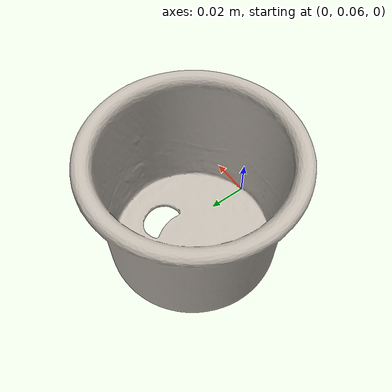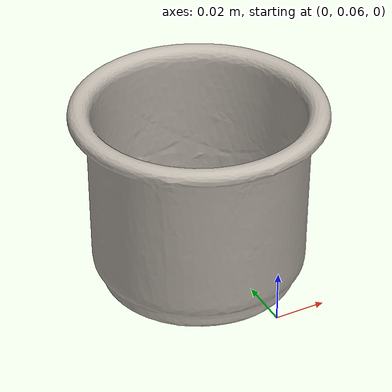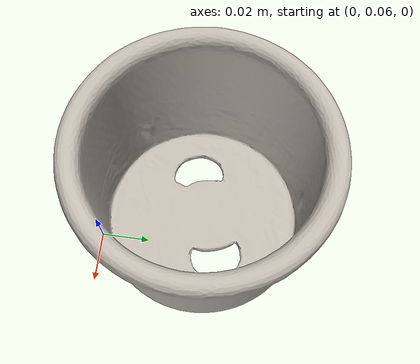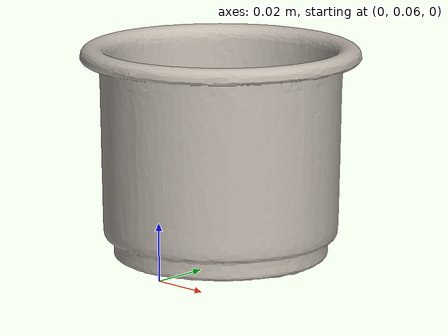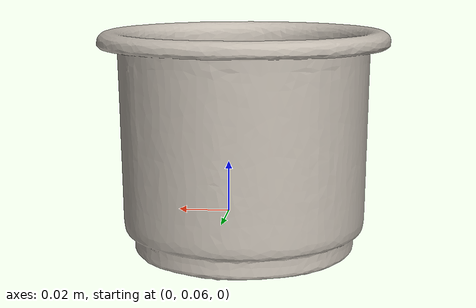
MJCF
<mujoco model="cups_1">
    <default>
        <default class="visual_cups">
          <geom group="2" type="mesh" contype="0" conaffinity="0"/>
        </default>
        <default class="collision_cups">
          <geom group="3" type="mesh"/>
        </default>
      </default>
    <asset>
      <texture type="2d" name="cups_1" file="cups_1.png"/>
      <material name="material_0" texture="cups_1" specular="0.5" shininess="0.5"/>
      <mesh file="cups_1.obj"/>
      <mesh file="cups_1_collision_0.obj"/>
      <mesh file="cups_1_collision_1.obj"/>
      <mesh file="cups_1_collision_2.obj"/>
      <mesh file="cups_1_collision_3.obj"/>
      <mesh file="cups_1_collision_4.obj"/>
      <mesh file="cups_1_collision_5.obj"/>
      <mesh file="cups_1_collision_6.obj"/>
      <mesh file="cups_1_collision_7.obj"/>
      <mesh file="cups_1_collision_8.obj"/>
      <mesh file="cups_1_collision_9.obj"/>
      <mesh file="cups_1_collision_10.obj"/>
      <mesh file="cups_1_collision_11.obj"/>
      <mesh file="cups_1_collision_12.obj"/>
      <mesh file="cups_1_collision_13.obj"/>
      <mesh file="cups_1_collision_14.obj"/>
      <mesh file="cups_1_collision_15.obj"/>
      <mesh file="cups_1_collision_16.obj"/>
      <mesh file="cups_1_collision_17.obj"/>
      <mesh file="cups_1_collision_18.obj"/>
      <mesh file="cups_1_collision_19.obj"/>
      <mesh file="cups_1_collision_20.obj"/>
      <mesh file="cups_1_collision_21.obj"/>
      <mesh file="cups_1_collision_22.obj"/>
      <mesh file="cups_1_collision_23.obj"/>
      <mesh file="cups_1_collision_24.obj"/>
      <mesh file="cups_1_collision_25.obj"/>
      <mesh file="cups_1_collision_26.obj"/>
      <mesh file="cups_1_collision_27.obj"/>
      <mesh file="cups_1_collision_28.obj"/>
      <mesh file="cups_1_collision_29.obj"/>
      <mesh file="cups_1_collision_30.obj"/>
      <mesh file="cups_1_collision_31.obj"/>
    </asset>
    <worldbody>
    <body name="obj_cups_1" pos="0.0 0.1 0.0">
        <joint type="free" />
        <geom material="material_0" mesh="cups_1"  class="visual_cups"/>
        <geom mesh="cups_1_collision_0" class="collision_cups"/>
        <geom mesh="cups_1_collision_1" class="collision_cups"/>
        <geom mesh="cups_1_collision_2" class="collision_cups"/>
        <geom mesh="cups_1_collision_3" class="collision_cups"/>
        <geom mesh="cups_1_collision_4" class="collision_cups"/>
        <geom mesh="cups_1_collision_5" class="collision_cups"/>
        <geom mesh="cups_1_collision_6" class="collision_cups"/>
        <geom mesh="cups_1_collision_7" class="collision_cups"/>
        <geom mesh="cups_1_collision_8" class="collision_cups"/>
        <geom mesh="cups_1_collision_9" class="collision_cups"/>
        <geom mesh="cups_1_collision_10" class="collision_cups"/>
        <geom mesh="cups_1_collision_11" class="collision_cups"/>
        <geom mesh="cups_1_collision_12" class="collision_cups"/>
        <geom mesh="cups_1_collision_13" class="collision_cups"/>
        <geom mesh="cups_1_collision_14" class="collision_cups"/>
        <geom mesh="cups_1_collision_15" class="collision_cups"/>
        <geom mesh="cups_1_collision_16" class="collision_cups"/>
        <geom mesh="cups_1_collision_17" class="collision_cups"/>
        <geom mesh="cups_1_collision_18" class="collision_cups"/>
        <geom mesh="cups_1_collision_19" class="collision_cups"/>
        <geom mesh="cups_1_collision_20" class="collision_cups"/>
        <geom mesh="cups_1_collision_21" class="collision_cups"/>
        <geom mesh="cups_1_collision_22" class="collision_cups"/>
        <geom mesh="cups_1_collision_23" class="collision_cups"/>
        <geom mesh="cups_1_collision_24" class="collision_cups"/>
        <geom mesh="cups_1_collision_25" class="collision_cups"/>
        <geom mesh="cups_1_collision_26" class="collision_cups"/>
        <geom mesh="cups_1_collision_27" class="collision_cups"/>
        <geom mesh="cups_1_collision_28" class="collision_cups"/>
        <geom mesh="cups_1_collision_29" class="collision_cups"/>
        <geom mesh="cups_1_collision_30" class="collision_cups"/>
        <geom mesh="cups_1_collision_31" class="collision_cups"/>
      </body>
    </worldbody>
  </mujoco>
